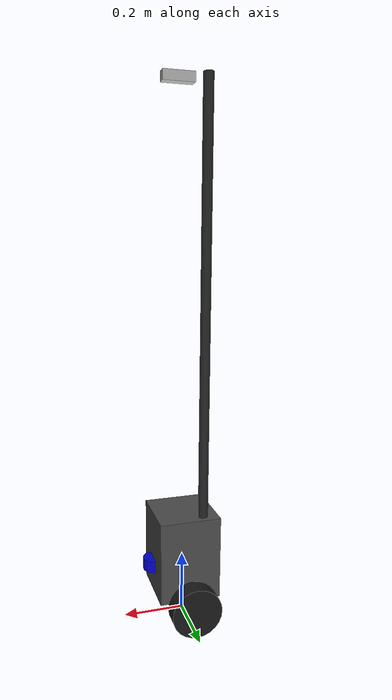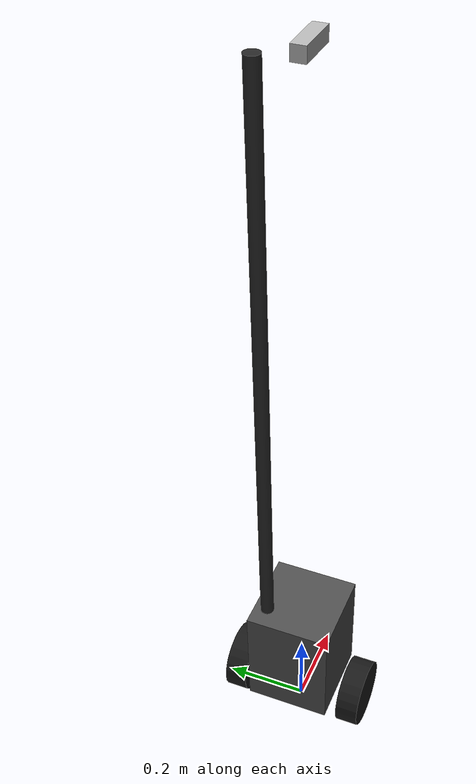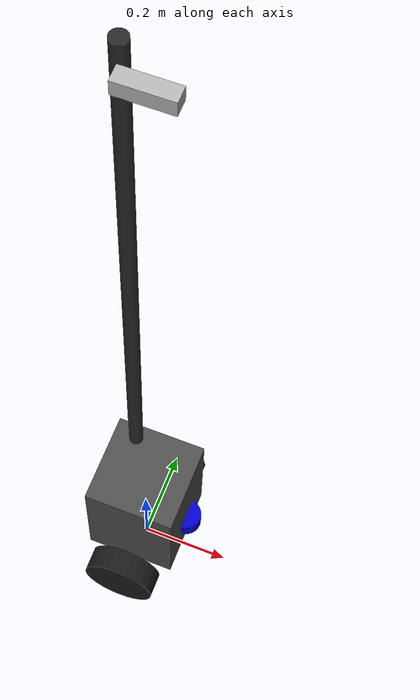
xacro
<?xml version="1.0"?>
<robot xmlns:xacro="http://www.ros.org/wiki/xacro" name="johnny5">

  <!-- Johnny 5 - Two-wheeled self-balancing robot                  -->
  <!-- Jetson AGX Orin + Teensy 4.1 + FSESC6.7 Pro                 -->
  <!-- Coordinate convention (REP 103):                             -->
  <!--   x = forward, y = left, z = up                             -->
  <!--   base_link = center of wheel axle                          -->

  <!-- TENTATIVE DIMENSIONS - Estimated from photos + 8x8" base    -->
  <!-- plates. All values marked [TENTATIVE] need physical          -->
  <!-- measurement on hardware to verify.                           -->

  <!-- Simulation mode (set via xacro arg: use_sim:=true) -->
  <xacro:arg name="use_sim" default="false"/>
  <xacro:property name="use_sim" value="$(arg use_sim)"/>

  <!-- Wheels: 6.5" Gyroor hoverboard hub motors (BOM-confirmed) -->
  <xacro:property name="wheel_radius"     value="0.08255"/>  <!-- 6.5" / 2 — confirmed from BOM -->
  <xacro:property name="wheel_width"      value="0.055"/>    <!-- [TENTATIVE] ~2.2", needs measurement -->
  <xacro:property name="wheel_mass"       value="1.8"/>      <!-- [TENTATIVE] hoverboard hub motor w/ magnets+windings -->
  <xacro:property name="wheel_separation" value="0.30"/>     <!-- [TENTATIVE] ~12" — 8" plate + 2x motor mount offset -->

  <!-- Chassis: 3x 8x8" aluminum plates with standoffs -->
  <xacro:property name="chassis_length"   value="0.203"/>    <!-- 8" = 203mm — confirmed by user -->
  <xacro:property name="chassis_width"    value="0.203"/>    <!-- 8" = 203mm — confirmed by user -->
  <xacro:property name="chassis_height"   value="0.28"/>     <!-- [TENTATIVE] ~11" — 3 plates + standoffs, user says 10-12" -->
  <xacro:property name="chassis_mass"     value="8.0"/>      <!-- [TENTATIVE] batteries+ESC+Jetson+3 plates+standoffs -->
  <xacro:property name="chassis_z_offset" value="0.14"/>     <!-- [TENTATIVE] chassis_height/2, assumes bottom plate at axle -->

  <!-- Mast: LS2015 carbon fiber survey pole, 4-section, 1.8m total -->
  <xacro:property name="mast_radius"      value="0.016"/>    <!-- 32mm diameter — from BOM (LS2015) -->
  <xacro:property name="mast_height"      value="1.35"/>     <!-- 3 x 0.45m sections (standard config) -->
  <xacro:property name="mast_mass"        value="0.5"/>      <!-- [TENTATIVE] carbon fiber pole + connectors -->
  <xacro:property name="mast_x_offset"    value="-0.05"/>    <!-- [TENTATIVE] slightly behind center -->
  <xacro:property name="mast_y_offset"    value="0.07"/>     <!-- [TENTATIVE] offset to one side per photos -->

  <!-- LiDAR: LDROBOT STL-19P — not yet mounted, position TBD -->
  <xacro:property name="lidar_x"          value="0.10"/>     <!-- [TENTATIVE] forward of base_link -->
  <xacro:property name="lidar_z"          value="0.10"/>     <!-- [TENTATIVE] design spec: 6-8" above ground -->

  <!-- IMU: BNO085 on Teensy breakout, upper deck area -->
  <xacro:property name="imu_x"            value="0.0"/>      <!-- [TENTATIVE] assumed centered -->
  <xacro:property name="imu_z"            value="0.22"/>     <!-- [TENTATIVE] near top plate of 3-plate stack -->

  <!-- Camera: OAK-D Pro at mast top -->
  <!-- camera_z = chassis_z_offset + chassis_height/2 + mast_height -->
  <!--         = 0.14 + 0.14 + 1.35 = 1.63m above base_link        -->
  <xacro:property name="camera_z"         value="1.63"/>     <!-- [TENTATIVE] depends on mast config + chassis height -->

  <!-- Include sub-files -->
  <xacro:include filename="$(find johnny5_description)/urdf/chassis.urdf.xacro"/>
  <xacro:include filename="$(find johnny5_description)/urdf/wheels.urdf.xacro"/>
  <xacro:include filename="$(find johnny5_description)/urdf/sensors.urdf.xacro"/>
  <xacro:include filename="$(find johnny5_description)/urdf/gazebo.urdf.xacro"/>

  <!-- ==================== Links & Joints ==================== -->

  <!-- base_footprint: ground-plane projection -->
  <link name="base_footprint"/>

  <joint name="base_footprint_to_base_link" type="fixed">
    <parent link="base_footprint"/>
    <child link="base_link"/>
    <origin xyz="0 0 ${wheel_radius}" rpy="0 0 0"/>
  </joint>

  <!-- base_link: wheel axle center -->
  <link name="base_link"/>

  <!-- Chassis -->
  <xacro:chassis/>

  <!-- Wheels -->
  <xacro:wheel prefix="left"  y_offset="${wheel_separation/2}"/>
  <xacro:wheel prefix="right" y_offset="${-wheel_separation/2}"/>

  <!-- Mast -->
  <xacro:mast/>

  <!-- Sensors -->
  <xacro:imu_sensor/>
  <xacro:lidar_sensor/>
  <xacro:camera_sensor/>

</robot>

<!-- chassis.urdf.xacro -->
<robot xmlns:xacro="http://www.ros.org/wiki/xacro">

  <!-- Chassis macro: main body of the robot (deck stack + electronics) -->
  <xacro:macro name="chassis">
    <joint name="base_link_to_chassis" type="fixed">
      <parent link="base_link"/>
      <child link="chassis_link"/>
      <origin xyz="0 0 ${chassis_z_offset}" rpy="0 0 0"/>
    </joint>

    <link name="chassis_link">
      <visual>
        <geometry>
          <box size="${chassis_length} ${chassis_width} ${chassis_height}"/>
        </geometry>
        <material name="dark_gray">
          <color rgba="0.3 0.3 0.3 1.0"/>
        </material>
      </visual>
      <collision>
        <geometry>
          <box size="${chassis_length} ${chassis_width} ${chassis_height}"/>
        </geometry>
      </collision>
      <inertial>
        <mass value="${chassis_mass}"/>
        <inertia
          ixx="${(1.0/12.0)*chassis_mass*(chassis_width*chassis_width + chassis_height*chassis_height)}"
          ixy="0" ixz="0"
          iyy="${(1.0/12.0)*chassis_mass*(chassis_length*chassis_length + chassis_height*chassis_height)}"
          iyz="0"
          izz="${(1.0/12.0)*chassis_mass*(chassis_length*chassis_length + chassis_width*chassis_width)}"/>
      </inertial>
    </link>
  </xacro:macro>

  <!-- Mast macro: carbon fiber survey pole (LS2015) -->
  <xacro:macro name="mast">
    <joint name="chassis_to_mast" type="fixed">
      <parent link="chassis_link"/>
      <child link="mast_link"/>
      <!-- [TENTATIVE] mast base at top of chassis; x/y offset estimated from photos -->
      <origin xyz="${mast_x_offset} ${mast_y_offset} ${chassis_height/2 + mast_height/2}" rpy="0 0 0"/>
    </joint>

    <link name="mast_link">
      <visual>
        <geometry>
          <cylinder radius="${mast_radius}" length="${mast_height}"/>
        </geometry>
        <material name="carbon">
          <color rgba="0.15 0.15 0.15 1.0"/>
        </material>
      </visual>
      <collision>
        <geometry>
          <cylinder radius="${mast_radius}" length="${mast_height}"/>
        </geometry>
      </collision>
      <inertial>
        <mass value="${mast_mass}"/>
        <inertia
          ixx="${(1.0/12.0)*mast_mass*(3*mast_radius*mast_radius + mast_height*mast_height)}"
          ixy="0" ixz="0"
          iyy="${(1.0/12.0)*mast_mass*(3*mast_radius*mast_radius + mast_height*mast_height)}"
          iyz="0"
          izz="${0.5*mast_mass*mast_radius*mast_radius}"/>
      </inertial>
    </link>
  </xacro:macro>

</robot>

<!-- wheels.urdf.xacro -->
<robot xmlns:xacro="http://www.ros.org/wiki/xacro">

  <!-- Wheel macro: 6.5" hoverboard hub motor -->
  <xacro:macro name="wheel" params="prefix y_offset">
    <joint name="${prefix}_wheel_joint" type="continuous">
      <parent link="base_link"/>
      <child link="${prefix}_wheel_link"/>
      <origin xyz="0 ${y_offset} 0" rpy="${-pi/2} 0 0"/>
      <axis xyz="0 0 1"/>
      <dynamics damping="0.01" friction="0.1"/>
    </joint>

    <link name="${prefix}_wheel_link">
      <visual>
        <geometry>
          <cylinder radius="${wheel_radius}" length="${wheel_width}"/>
        </geometry>
        <material name="black">
          <color rgba="0.1 0.1 0.1 1.0"/>
        </material>
      </visual>
      <collision>
        <geometry>
          <cylinder radius="${wheel_radius}" length="${wheel_width}"/>
        </geometry>
      </collision>
      <inertial>
        <mass value="${wheel_mass}"/>
        <inertia
          ixx="${(1.0/12.0)*wheel_mass*(3*wheel_radius*wheel_radius + wheel_width*wheel_width)}"
          ixy="0" ixz="0"
          iyy="${(1.0/12.0)*wheel_mass*(3*wheel_radius*wheel_radius + wheel_width*wheel_width)}"
          iyz="0"
          izz="${0.5*wheel_mass*wheel_radius*wheel_radius}"/>
      </inertial>
    </link>
  </xacro:macro>

</robot>

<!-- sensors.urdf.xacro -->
<robot xmlns:xacro="http://www.ros.org/wiki/xacro">

  <!-- ==================== IMU (BNO085) ==================== -->
  <xacro:macro name="imu_sensor">
    <joint name="base_link_to_imu" type="fixed">
      <parent link="base_link"/>
      <child link="imu_link"/>
      <origin xyz="${imu_x} 0 ${imu_z}" rpy="0 0 0"/>
    </joint>

    <link name="imu_link">
      <visual>
        <geometry>
          <box size="0.03 0.03 0.005"/>
        </geometry>
        <material name="green">
          <color rgba="0.0 0.8 0.0 1.0"/>
        </material>
      </visual>
      <inertial>
        <mass value="0.01"/>
        <inertia ixx="1e-6" ixy="0" ixz="0" iyy="1e-6" iyz="0" izz="1e-6"/>
      </inertial>
    </link>
  </xacro:macro>

  <!-- ==================== LiDAR (LDROBOT STL-19P) ==================== -->
  <!-- frame_id "laser" matches the existing ldrobot_lidar_ros2 launch files -->
  <xacro:macro name="lidar_sensor">
    <joint name="base_link_to_laser" type="fixed">
      <parent link="base_link"/>
      <child link="laser"/>
      <origin xyz="${lidar_x} 0 ${lidar_z}" rpy="0 0 0"/>
    </joint>

    <link name="laser">
      <visual>
        <geometry>
          <cylinder radius="0.035" length="0.04"/>
        </geometry>
        <material name="blue">
          <color rgba="0.0 0.0 0.8 1.0"/>
        </material>
      </visual>
      <collision>
        <geometry>
          <cylinder radius="0.035" length="0.04"/>
        </geometry>
      </collision>
      <inertial>
        <mass value="0.1"/>
        <inertia ixx="1e-5" ixy="0" ixz="0" iyy="1e-5" iyz="0" izz="1e-5"/>
      </inertial>
    </link>
  </xacro:macro>

  <!-- ==================== Camera (OAK-D Pro) ==================== -->
  <xacro:macro name="camera_sensor">
    <!-- Camera body on mast top -->
    <joint name="base_link_to_camera" type="fixed">
      <parent link="base_link"/>
      <child link="camera_link"/>
      <origin xyz="0.02 0 ${camera_z}" rpy="0 0 0"/>
    </joint>

    <link name="camera_link">
      <visual>
        <geometry>
          <box size="0.10 0.03 0.03"/>
        </geometry>
        <material name="silver">
          <color rgba="0.7 0.7 0.7 1.0"/>
        </material>
      </visual>
      <collision>
        <geometry>
          <box size="0.10 0.03 0.03"/>
        </geometry>
      </collision>
      <inertial>
        <mass value="0.15"/>
        <inertia ixx="1e-5" ixy="0" ixz="0" iyy="1e-5" iyz="0" izz="1e-5"/>
      </inertial>
    </link>

    <!-- Optical frame: z forward, x right, y down (REP 103) -->
    <joint name="camera_to_optical" type="fixed">
      <parent link="camera_link"/>
      <child link="camera_optical_frame"/>
      <origin xyz="0 0 0" rpy="${-pi/2} 0 ${-pi/2}"/>
    </joint>

    <link name="camera_optical_frame"/>
  </xacro:macro>

</robot>
